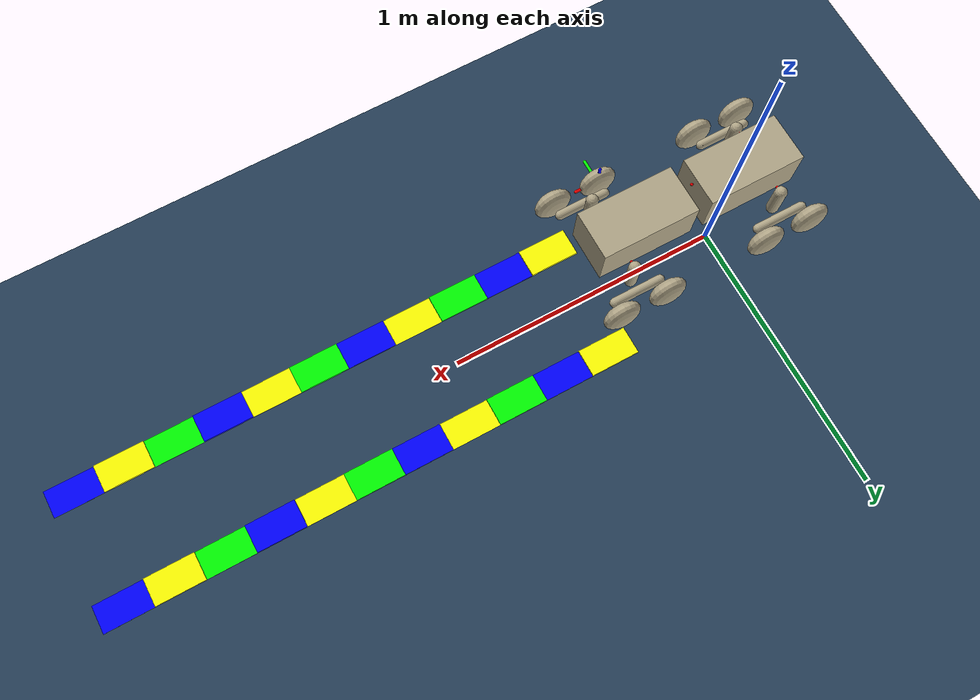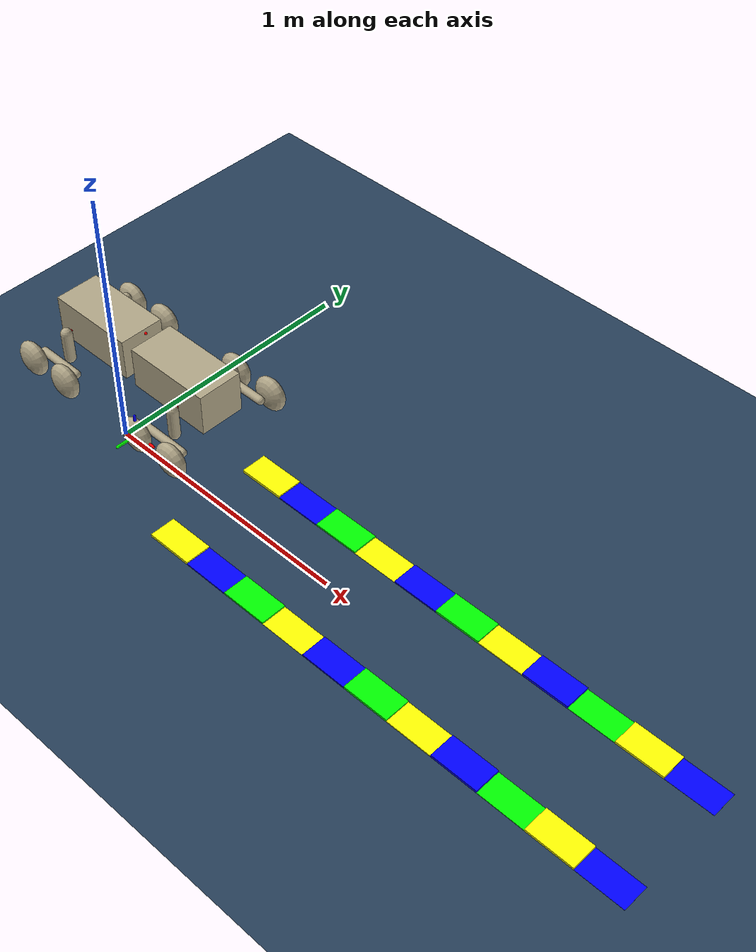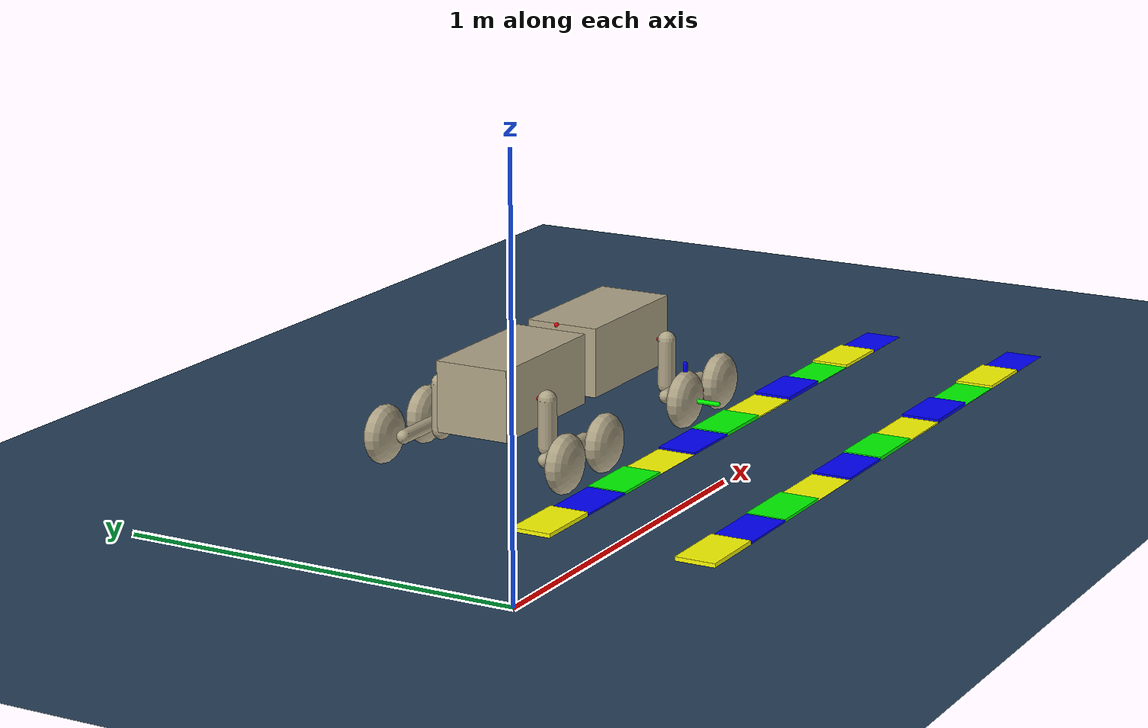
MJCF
<mujoco model="walter_sr scene">
  <include file="WaLTER_Senior_v2.xml"/>

  <statistic center="0 0 0.1" extent="0.8"/>

  <visual>
    <headlight diffuse="0.6 0.6 0.6" ambient="0.3 0.3 0.3" specular="0 0 0"/>
    <rgba haze="0.15 0.25 0.35 1"/>
    <global azimuth="120" elevation="-20"/>
  </visual>

  <asset>
    <texture type="skybox" builtin="gradient" rgb1="0.3 0.5 0.7" rgb2="0 0 0" width="512" height="3072"/>
    <texture type="2d" name="groundplane" builtin="checker" mark="edge" rgb1="0.2 0.3 0.4" rgb2="0.1 0.2 0.3"
      markrgb="0.8 0.8 0.8" width="300" height="300"/>
    <material name="groundplane" texture="groundplane" texuniform="true" texrepeat="5 5" reflectance="0.2"/>
    <material name="wood" rgba="0.7 0.5 0.3 1"/>
  </asset>

  <worldbody>
    <light pos="0 0 1.5" dir="0 0 -1" directional="true"/>
    <camera name="default" pos="0.846 -1.465 0.916" xyaxes="0.866 0.500 0.000 -0.171 0.296 0.940"/>
    <geom name="floor" size="0 0 0.05" type="plane" material="groundplane"/>

    <geom name="tile1" type="box" pos="0.525 -0.21 0.005" size="0.09 0.05 0.005" rgba="1.0 1.0 0.0 1"/>
    <geom name="tile2" type="box" pos="0.525 0.21 0.005" size="0.09 0.05 0.005" rgba="1.0 1.0 0.0 1"/>

    <geom name="tile3" type="box" pos="0.705 -0.21 0.0023" size="0.09 0.05 0.0023" rgba="0.0 0.0 1.0 1"/>
    <geom name="tile4" type="box" pos="0.705 0.21 0.0023" size="0.09 0.05 0.0023" rgba="0.0 0.0 1.0 1"/>

    <geom name="tile5" type="box" pos="0.885 -0.21 0.0035" size="0.09 0.05 0.0035" rgba="0.0 1.0 0.0 1"/>
    <geom name="tile6" type="box" pos="0.885 0.21 0.0035" size="0.09 0.05 0.0035" rgba="0.0 1.0 0.0 1"/>

    <geom name="tile7" type="box" pos="1.065 -0.21 0.0005" size="0.09 0.05 0.0005" rgba="1.0 1.0 0.0 1"/>
    <geom name="tile8" type="box" pos="1.065 0.21 0.0005" size="0.09 0.05 0.0005" rgba="1.0 1.0 0.0 1"/>

    <geom name="tile9" type="box" pos="1.245 -0.21 0.0029" size="0.09 0.05 0.0029" rgba="0.0 0.0 1.0 1"/>
    <geom name="tile10" type="box" pos="1.245 0.21 0.0029" size="0.09 0.05 0.0029" rgba="0.0 0.0 1.0 1"/>

    <geom name="tile11" type="box" pos="1.425 -0.21 0.0044" size="0.09 0.05 0.0044" rgba="0.0 1.0 0.0 1"/>
    <geom name="tile12" type="box" pos="1.425 0.21 0.0044" size="0.09 0.05 0.0044" rgba="0.0 1.0 0.0 1"/>

    <geom name="tile13" type="box" pos="1.605 -0.21 0.0018" size="0.09 0.05 0.0018" rgba="1.0 1.0 0.0 1"/>
    <geom name="tile14" type="box" pos="1.605 0.21 0.0018" size="0.09 0.05 0.0018" rgba="1.0 1.0 0.0 1"/>

    <geom name="tile15" type="box" pos="1.785 -0.21 0.0049" size="0.09 0.05 0.0049" rgba="0.0 0.0 1.0 1"/>
    <geom name="tile16" type="box" pos="1.785 0.21 0.0049" size="0.09 0.05 0.0049" rgba="0.0 0.0 1.0 1"/>

    <geom name="tile17" type="box" pos="1.965 -0.21 0.0011" size="0.09 0.05 0.0011" rgba="0.0 1.0 0.0 1"/>
    <geom name="tile18" type="box" pos="1.965 0.21 0.0011" size="0.09 0.05 0.0011" rgba="0.0 1.0 0.0 1"/>

    <geom name="tile19" type="box" pos="2.145 -0.21 0.0042" size="0.09 0.05 0.0042" rgba="1.0 1.0 0.0 1"/>
    <geom name="tile20" type="box" pos="2.145 0.21 0.0042" size="0.09 0.05 0.0042" rgba="1.0 1.0 0.0 1"/>

    <geom name="tile21" type="box" pos="2.325 -0.21 0.0003" size="0.09 0.05 0.0003" rgba="0.0 0.0 1.0 1"/>
    <geom name="tile22" type="box" pos="2.325 0.21 0.0003" size="0.09 0.05 0.0003" rgba="0.0 0.0 1.0 1"/>

  </worldbody>

</mujoco>

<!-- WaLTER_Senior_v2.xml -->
<mujoco model="MuJoCo Model">
  <compiler angle="radian" autolimits="false"/>

  <worldbody>
    <body name="torso" pos="0 0 0.5">
      <site name="torso_site" pos="0.188 0 0.08" type="sphere" rgba="1 0 0 1"/>
      <joint name="torso_joint" type="free" limited="false" actuatorfrclimited="false"/>
      <geom size="0.165 0.08255 0.0762" type="box" mass="8.201" rgba="0.694118 0.65098 0.533333 1"/>

      <body name="torso_left_thigh" pos="-0.0761 0.10795 0">
        <joint name="torso_left_thigh_joint" pos="0 0 0" axis="0 1 0" armature="0.0072" damping="0.5"/>
        <geom name="torso_left_thigh_geom" size="0.02 0.0508" pos="0 0.02 -0.0508" type="capsule" mass="0.461" rgba="0.694118 0.65098 0.533333 1"/>
        <site name="tl_thigh_site" pos="0 0 0" rgba="1 0 0 1"/>

        <body name="torso_left_shin" pos="0 0.06135 -0.1016">
          <joint name="torso_left_thigh_shin_joint" pos="0 0 0" axis="0 1 0" armature="0.01805" damping="0.5"/>
          <geom name="torso_left_shin_geom" size="0.015 0.08255" quat="0.707107 0 0.707107 0" type="capsule" mass="0.305" rgba="0.694118 0.65098 0.533333 1"/>
          <site name="tl_shin_site" pos="0 0 0" rgba="1 0 0 1"/>

          <body name="torso_left_front_wheel" pos="0.08255 0.04675 0">
            <geom name="torso_left_front_wheel_geom" size="0.0635 0.0635 0.03175" quat="0.707107 0.707107 0 0" type="ellipsoid" solref="0.2 0.5" mass="0.873" rgba="0.694118 0.65098 0.533333 1"/>
            <site name="tlf_wheel_site" pos="0 0 0" size="0.0635 0.0635 0.03175" quat="0.707107 0.707107 0 0" type="ellipsoid" rgba="1 0 0 1"/>
          </body>

          <body name="torso_left_rear_wheel" pos="-0.08255 0.04675 0">
            <geom name="torso_left_rear_wheel_geom" size="0.0635 0.0635 0.03175" quat="0.707107 0.707107 0 0" type="ellipsoid" solref="0.2 0.5" mass="0.873" rgba="0.694118 0.65098 0.533333 1"/>
            <site name="tlr_wheel_site" pos="0 0 0" size="0.0635 0.0635 0.03175" quat="0.707107 0.707107 0 0" type="ellipsoid" rgba="1 0 0 1"/>
          </body>
        </body>
      </body>

      <body name="torso_right_thigh" pos="-0.0761 -0.10795 0">
        <joint name="torso_right_thigh_joint" pos="0 0 0" axis="0 1 0" armature="0.0072" damping="0.5"/>
        <geom name="torso_right_thigh_geom" size="0.02 0.0508" pos="0 -0.02 -0.0508" type="capsule" mass="0.461" rgba="0.694118 0.65098 0.533333 1"/>
        <site name="tr_thigh_site" pos="0 0 0" rgba="1 0 0 1"/>

        <body name="torso_right_shin" pos="0 -0.06135 -0.1016">
          <joint name="torso_right_thigh_shin_joint" pos="0 0 0" axis="0 1 0" armature="0.01805" damping="0.5"/>
          <geom name="torso_right_shin_geom" size="0.015 0.08255" quat="0.707107 0 0.707107 0" type="capsule" mass="0.305" rgba="0.694118 0.65098 0.533333 1"/>
          <site name="tr_shin_site" pos="0 0 0" rgba="1 0 0 1"/>

          <body name="torso_right_front_wheel" pos="0.08255 -0.04675 0">
            <geom name="torso_right_front_wheel_geom" size="0.0635 0.0635 0.03175" quat="0.707107 0.707107 0 0" type="ellipsoid" solref="0.2 0.5" mass="0.873" rgba="0.694118 0.65098 0.533333 1"/>
            <site name="trf_wheel_site" pos="0 0 0" size="0.0635 0.0635 0.03175" quat="0.707107 0.707107 0 0" type="ellipsoid" rgba="1 0 0 1"/>
          </body>

          <body name="torso_right_rear_wheel" pos="-0.08255 -0.04675 0">
            <geom name="torso_right_rear_wheel_geom" size="0.0635 0.0635 0.03175" quat="0.707107 0.707107 0 0" type="ellipsoid" solref="0.2 0.5" mass="0.873" rgba="0.694118 0.65098 0.533333 1"/>
            <site name="trr_wheel_site" pos="0 0 0" size="0.0635 0.0635 0.03175" quat="0.707107 0.707107 0 0" type="ellipsoid" rgba="1 0 0 1"/>
          </body>
        </body>
      </body>

      <body name="head" pos="0.376 0 0">
        <geom size="0.165 0.08255 0.0762" type="box" mass="8.201" rgba="0.694118 0.65098 0.533333 1"/>

        <body name="head_left_thigh" pos="0.0761 0.10795 0">
          <joint name="head_left_thigh_joint" pos="0 0 0" axis="0 1 0" armature="0.0072" damping="0.5"/>
          <geom name="head_left_thigh_geom" size="0.02 0.0508" pos="0 0.02 -0.0508" type="capsule" mass="0.461" rgba="0.694118 0.65098 0.533333 1"/>
          <site name="hl_thigh_site" pos="0 0 0" rgba="1 0 0 1"/>

          <body name="head_left_shin" pos="0 0.06135 -0.1016">
            <joint name="head_left_thigh_shin_joint" pos="0 0 0" axis="0 1 0" armature="0.01805" damping="0.5"/>
            <geom name="head_left_shin_geom" size="0.015 0.08255" quat="0.707107 0 0.707107 0" type="capsule" mass="0.305" rgba="0.694118 0.65098 0.533333 1"/>
            <site name="hl_shin_site" pos="0 0 0" rgba="1 0 0 1"/>

            <body name="head_left_front_wheel" pos="0.08255 0.04675 0">
              <geom name="head_left_front_wheel_geom" size="0.0635 0.0635 0.03175" quat="0.707107 0.707107 0 0" type="ellipsoid" solref="0.2 0.5" mass="0.873" rgba="0.694118 0.65098 0.533333 1"/>
              <site name="hlf_wheel_site" pos="0 0 0" size="0.0635 0.0635 0.03175" quat="0.707107 0.707107 0 0" type="ellipsoid" rgba="1 0 0 1"/>
            </body>

            <body name="head_left_rear_wheel" pos="-0.08255 0.04675 0">
              <geom name="head_left_rear_wheel_geom" size="0.0635 0.0635 0.03175" quat="0.707107 0.707107 0 0" type="ellipsoid" solref="0.2 0.5" mass="0.873" rgba="0.694118 0.65098 0.533333 1"/>
              <site name="hlr_wheel_site" pos="0 0 0" size="0.0635 0.0635 0.03175" quat="0.707107 0.707107 0 0" type="ellipsoid" rgba="1 0 0 1"/>
              </body>
          </body>
        </body>

        <body name="head_right_thigh" pos="0.0761 -0.10795 0">
          <joint name="head_right_thigh_joint" pos="0 0 0" axis="0 1 0" armature="0.0072" damping="0.5"/>
          <geom name="head_right_thigh_geom" size="0.02 0.0508" pos="0 -0.02 -0.0508" type="capsule" mass="0.461" rgba="0.694118 0.65098 0.533333 1"/>
          <site name="hr_thigh_site" pos="0 0 0" rgba="1 0 0 1"/>

          <body name="head_right_shin" pos="0 -0.06135 -0.1016">
            <joint name="head_right_thigh_shin_joint" pos="0 0 0" axis="0 1 0" armature="0.01805" damping="0.5"/>
            <geom name="head_right_shin_geom" size="0.015 0.08255" quat="0.707107 0 0.707107 0" type="capsule" mass="0.305" rgba="0.694118 0.65098 0.533333 1"/>
            <site name="hr_shin_site" pos="0 0 0" rgba="1 0 0 1"/>

            <body name="head_right_front_wheel" pos="0.08255 -0.04675 0">
              <geom name="head_right_front_wheel_geom" size="0.0635 0.0635 0.03175" quat="0.707107 0.707107 0 0" type="ellipsoid" solref="0.2 0.5" mass="0.873" rgba="0.694118 0.65098 0.533333 1"/>
              <site name="hrf_wheel_site" pos="0 0 0" size="0.0635 0.0635 0.03175" quat="0.707107 0.707107 0 0" type="ellipsoid" rgba="1 0 0 1"/>
            </body>

            <body name="head_right_rear_wheel" pos="-0.08255 -0.04675 0">
              <geom name="head_right_rear_wheel_geom" size="0.0635 0.0635 0.03175" quat="0.707107 0.707107 0 0" type="ellipsoid" solref="0.2 0.5" mass="0.873" rgba="0.694118 0.65098 0.533333 1"/>
              <site name="hrr_wheel_site" pos="0 0 0" size="0.0635 0.0635 0.03175" quat="0.707107 0.707107 0 0" type="ellipsoid" rgba="1 0 0 1"/>
              <site name="hrr_xaxis" type="capsule" size="0.005 0.04" pos="0.04 0 0" quat="0.707107 0 0.707107 0" rgba="1 0 0 1"/>
              <site name="hrr_yaxis" type="capsule" size="0.005 0.04" pos="0 -0.04 0" quat="0.707107 -0.707107 0 0" rgba="0 1 0 1"/>
              <site name="hrr_zaxis" type="capsule" size="0.005 0.04" pos="0 0 0.04" quat="1 0 0 0" rgba="0 0 1 1"/>
            </body>
          </body>
        </body>
      </body>
    </body>
  </worldbody>

  <actuator>
    <general name="bl_hip" joint="torso_left_thigh_joint"/>
    <general name="bl_knee" joint="torso_left_thigh_shin_joint"/>
    <general name="br_hip" joint="torso_right_thigh_joint"/>
    <general name="br_knee" joint="torso_right_thigh_shin_joint"/>
    <general name="fl_hip" joint="head_left_thigh_joint"/>
    <general name="fl_knee" joint="head_left_thigh_shin_joint"/>
    <general name="fr_hip" joint="head_right_thigh_joint"/>
    <general name="fr_knee" joint="head_right_thigh_shin_joint"/>
  </actuator>

  <sensor>
    <force  name="hrf_wheel_force_sensor"  site="hlr_wheel_site"/>
    <torque name="hrf_wheel_torque_sensor" site="hlr_wheel_site"/>
    <accelerometer name="body_accel" site="torso_site"/>
    <gyro name="body_gyro" site="torso_site"/>
  </sensor>

    <!-- key frame has 0,0 for wheel sites because the bodies have the positions fixed/initialized (k0 - z -) -->
    <keyframe>
      <key name="home"
        qpos="0 0 0.1675 1 0 0 0
              0 0
              0 0
              0 0
              0 0"
        ctrl="0 0
              0 0
              0 0
              0 0"/>
      <key name="flat"
        qpos='0 0 0.05 1 0 0 0 1.71253 -1.71287 1.71253 -1.71287 -1.71253 1.71287 -1.71253 1.71287'
        ctrl="0 0
              0 0
              0 0
              0 0"/>
      <key name="flat_up"
        qpos='0.0898423 -0.0025112 0.05 1 0 0 0 3.14 3.14 3.14 3.14 3.14 3.14 3.14 3.14'
        ctrl="0 0
              0 0
              0 0
              0 0"/>
      <key name="fortumbling"
        qpos="0 0 0.13 1 0 0 0
              1.5708 0
              1.5708 0
              -1.5708 0
              -1.5708 0"
        ctrl="0 0
              0 0
              0 0
              0 0"/>
      <key name="fortumbling2"
        qpos="0 0 0.13 1 0 0 0
              0.659736 -0.659736
              0.659736 -0.659736
              -0.659736 0.659736
              -0.659736 0.659736"
        ctrl="0 0
              0 0
              0 0
              0 0"/>
      <key name="shinup30deg"
        qpos="0 0 0.19 1 0 0 0
              0.534 0
              0.534 0
              -0.534 0
              -0.534 0"
        ctrl="0 0
              0 0
              0 0
              0 0"/>
      <key name="fortumbling3"
        qpos="0 0 0.13 1 0 0 0
              0.659736 -0.659736
              0.659736 -0.659736
              0.659736 -0.659736
              0.659736 -0.659736"
        ctrl="0 0
              0 0
              0 0
              0 0"/>
    </keyframe>
        <!-- qpos='0.0898423 -0.0025112 0.05 1 0 0 0 3.62333 -5.46591 3.62333 -5.46591 3.62333 -5.46591 3.62333 -5.46591 ' -->
</mujoco>
